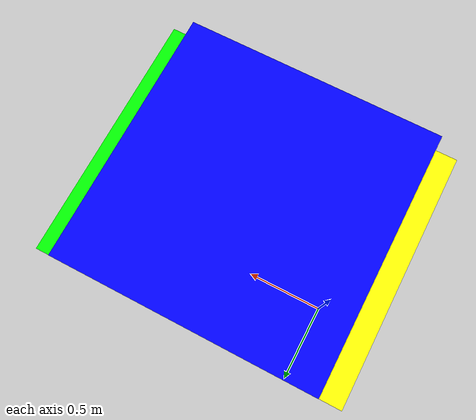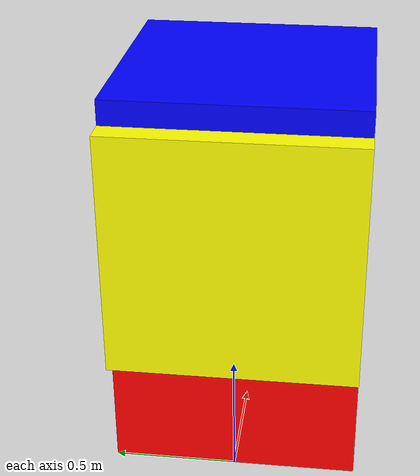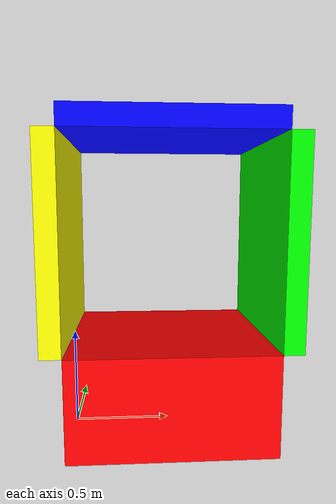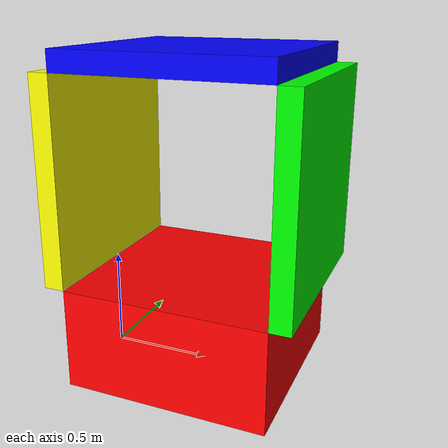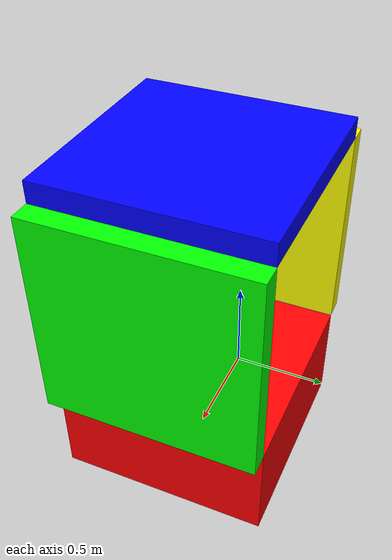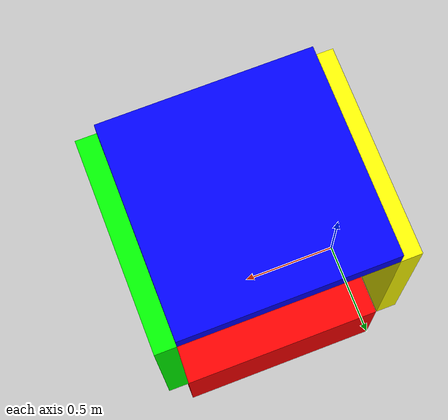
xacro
<?xml version="1.0" encoding="UTF-8"?>
<robot name="test_robot_01" xmlns:xacro="http://www.ros.org/wiki/xacro">
  <material name="red">
    <color rgba="1.0 0.0 0.0 1.0"/>
  </material>
  <material name="green">
    <color rgba="0.0 1.0 0.0 1.0"/>
  </material>
  <material name="blue">
    <color rgba="0.0 0.0 1.0 1.0"/>
  </material>
  <material name="yellow">
    <color rgba="1.0 1.0 0.0 1.0"/>
  </material>

  <xacro:macro name="box_inertial" params="mass origin d w h">
    <inertial>
      <origin xyz="${origin}" rpy="0 0 0"/>
      <mass value="${mass}"/>
      <inertia ixx="${mass * (w ** 2 + h ** 2) / 12}"
               ixy="0.0" iyy="${mass * (d ** 2 + h ** 2) / 12}"
               ixz="0.0" iyz="0.0" izz="${mass * (w ** 2 + d ** 2) / 12}"/>
    </inertial>
  </xacro:macro>

  <xacro:macro name="default_motor_transmission" params="joint_name gazebo_control_mode">
    <transmission name="${joint_name}_trans">
      <type>transmission_interface/SimpleTransmission</type>
      <joint name="${joint_name}">
        <xacro:if value="${gazebo_control_mode=='effort'}">
          <hardwareInterface>hardware_interface/EffortJointInterface</hardwareInterface>
        </xacro:if>
        <xacro:if value="${gazebo_control_mode=='position'}">
          <hardwareInterface>hardware_interface/PositionJointInterface</hardwareInterface>
        </xacro:if>
        <xacro:if value="${gazebo_control_mode=='velocity'}">
          <hardwareInterface>hardware_interface/VelocityJointInterface</hardwareInterface>
        </xacro:if>
      </joint>
      <actuator name="${joint_name}_motor">
        <xacro:if value="${gazebo_control_mode=='effort'}">
          <hardwareInterface>hardware_interface/EffortJointInterface</hardwareInterface>
        </xacro:if>
        <xacro:if value="${gazebo_control_mode=='velocity'}">
          <hardwareInterface>hardware_interface/VelocityJointInterface</hardwareInterface>
        </xacro:if>
        <mechanicalReduction>1</mechanicalReduction>
      </actuator>
    </transmission>
  </xacro:macro>

  <link name="right_pad1">
    <visual>
      <origin xyz="0.5 0 0.25" rpy="0 0 0"/>
      <geometry>
        <box size="1.0 1.0 0.5" />
      </geometry>
      <material name="red"/>
    </visual>
    <collision>
      <origin xyz="0.5 0 0.25" rpy="0 0 0"/>
      <geometry>
        <box size="1.0 1.0 0.5" />
      </geometry>
    </collision>
    <xacro:box_inertial mass="0.5" origin="0.5 0 0.25" d="1.0" w="1.0" h="0.5"/>
  </link>
  <gazebo reference="right_pad1">
    <material>Gazebo/Red</material>
    <mu1>1</mu1>
    <mu2>1</mu2>
    <kp>40000.0</kp>
    <kd>0.0</kd>
    <minDepth>0.0</minDepth>
    <maxContacts>5</maxContacts>
    <selfCollide>false</selfCollide>
    <dampingFactor>0.0</dampingFactor>
  </gazebo>

  <!-- Joints are respect the PARENT in XACRO/URDF -->
  <!-- Joints are respect the CHILD in SDF -->
  <joint name="right_pad1_joint" type="revolute">
    <parent link="right_pad1"/>
    <child  link="right_pad2"/>
    <origin xyz="1.0 0 0.5" rpy="0 -1.57 0"/>
    <axis xyz="0 1 0"/>
    <limit effort="10000.0" lower="-3.14" upper="3.14" velocity="10000.0"/>
    <dynamics damping="0" friction="0"/>
  </joint>

  <link name="right_pad2">
    <collision name="right_pad2_collision">
      <origin xyz="0.5 0 -0.05" rpy="0 0 0"/>
      <geometry>
        <box size="1.0 1.0 0.1" />
      </geometry>
    </collision>
    <visual name="right_pad2_visual">
      <origin xyz="0.5 0 -0.05" rpy="0 0 0"/>
      <geometry>
        <box size="1.0 1.0 0.1" />
      </geometry>
      <material name="green"/>
    </visual>
    <xacro:box_inertial mass="0.5" origin="0.5 0 -0.05" d="1.0" w="1.0" h="0.1"/>
  </link>
  <gazebo reference="right_pad2">
    <material>Gazebo/Green</material>
    <mu1>1</mu1>
    <mu2>1</mu2>
    <kp>40000.0</kp>
    <kd>0.0</kd>
    <minDepth>0.0</minDepth>
    <maxContacts>5</maxContacts>
    <selfCollide>false</selfCollide>
    <dampingFactor>0.0</dampingFactor>
  </gazebo>

  <joint name="right_pad2_joint" type="revolute">
    <parent link="right_pad2"/>
    <child  link="right_pad3"/>
    <origin xyz="1.0 0 0" rpy="0 -1.57 0"/>
    <axis xyz="0 1 0"/>
    <limit effort="10000.0" lower="-3.14" upper="3.14" velocity="10000.0"/>
    <dynamics damping="0" friction="0"/>
  </joint>

  <link name="right_pad3">
    <collision name="right_pad3_collision">
      <origin xyz="0.5 0 -0.05" rpy="0 0 0"/>
      <geometry>
        <box size="1.0 1.0 0.1" />
      </geometry>
    </collision>
    <visual name="right_pad3_visual">
      <origin xyz="0.5 0 -0.05" rpy="0 0 0"/>
      <geometry>
        <box size="1.0 1.0 0.1" />
      </geometry>
      <material name="blue"/>
    </visual>
    <xacro:box_inertial mass="0.5" origin="0.5 0 -0.05" d="1.0" w="1.0" h="0.1"/>
  </link>
  <gazebo reference="right_pad3">
    <material>Gazebo/Blue</material>
    <mu1>1</mu1>
    <mu2>1</mu2>
    <kp>40000.0</kp>
    <kd>0.0</kd>
    <minDepth>0.0</minDepth>
    <maxContacts>5</maxContacts>
    <selfCollide>false</selfCollide>
    <dampingFactor>0.0</dampingFactor>
  </gazebo>

  <joint name="right_pad3_joint" type="revolute">
    <parent link="right_pad3"/>
    <child  link="right_pad4"/>
    <origin xyz="1.0 0 0" rpy="0 -1.57 0"/>
    <axis xyz="0 1 0"/>
    <limit effort="10000.0" lower="-3.14" upper="3.14" velocity="10000.0"/>
    <dynamics damping="0" friction="0"/>
  </joint>

  <link name="right_pad4">
    <collision name="right_pad4_collision">
      <origin xyz="0.5 0 -0.05" rpy="0 0 0"/>
      <geometry>
        <box size="1.0 1.0 0.1" />
      </geometry>
    </collision>
    <visual name="right_pad4_visual">
      <origin xyz="0.5 0 -0.05" rpy="0 0 0"/>
      <geometry>
        <box size="1.0 1.0 0.1" />
      </geometry>
      <material name="yellow"/>
    </visual>
    <xacro:box_inertial mass="0.5" origin="0.5 0 -0.05" d="1.0" w="1.0" h="0.1"/>
  </link>
  <gazebo reference="right_pad4">
    <material>Gazebo/Yellow</material>
    <mu1>1</mu1>
    <mu2>1</mu2>
    <kp>40000.0</kp>
    <kd>0.0</kd>
    <minDepth>0.0</minDepth>
    <maxContacts>5</maxContacts>
    <selfCollide>false</selfCollide>
    <dampingFactor>0.0</dampingFactor>
  </gazebo>

  <gazebo>
    <joint name='1_to_4_connection_joint' type='revolute'>
      <pose>0 0 0.5 0 0 0</pose>
      <child>right_pad1</child>
      <parent>right_pad4</parent>
      <axis>
        <xyz>0 1 0</xyz>
        <limit>
          <lower>-1e+16</lower>
          <upper>1e+16</upper>
        </limit>
        <dynamics>
          <spring_reference>0</spring_reference>
          <spring_stiffness>0</spring_stiffness>
        </dynamics>
        <use_parent_model_frame>1</use_parent_model_frame>
      </axis>
    </joint>
  </gazebo>
  <gazebo>
    <plugin name="gazebo_ros_control" filename="libgazebo_dc_motor.so">
      <robotNamespace>test_robot_01</robotNamespace>
      <robotSimType>gazebo_dc_motor/DefaultRobotHWSim</robotSimType>
      <legacyModeNS>false</legacyModeNS>
    </plugin>
  </gazebo>
  <xacro:default_motor_transmission joint_name="right_pad2_joint" gazebo_control_mode="position"/>
</robot>
